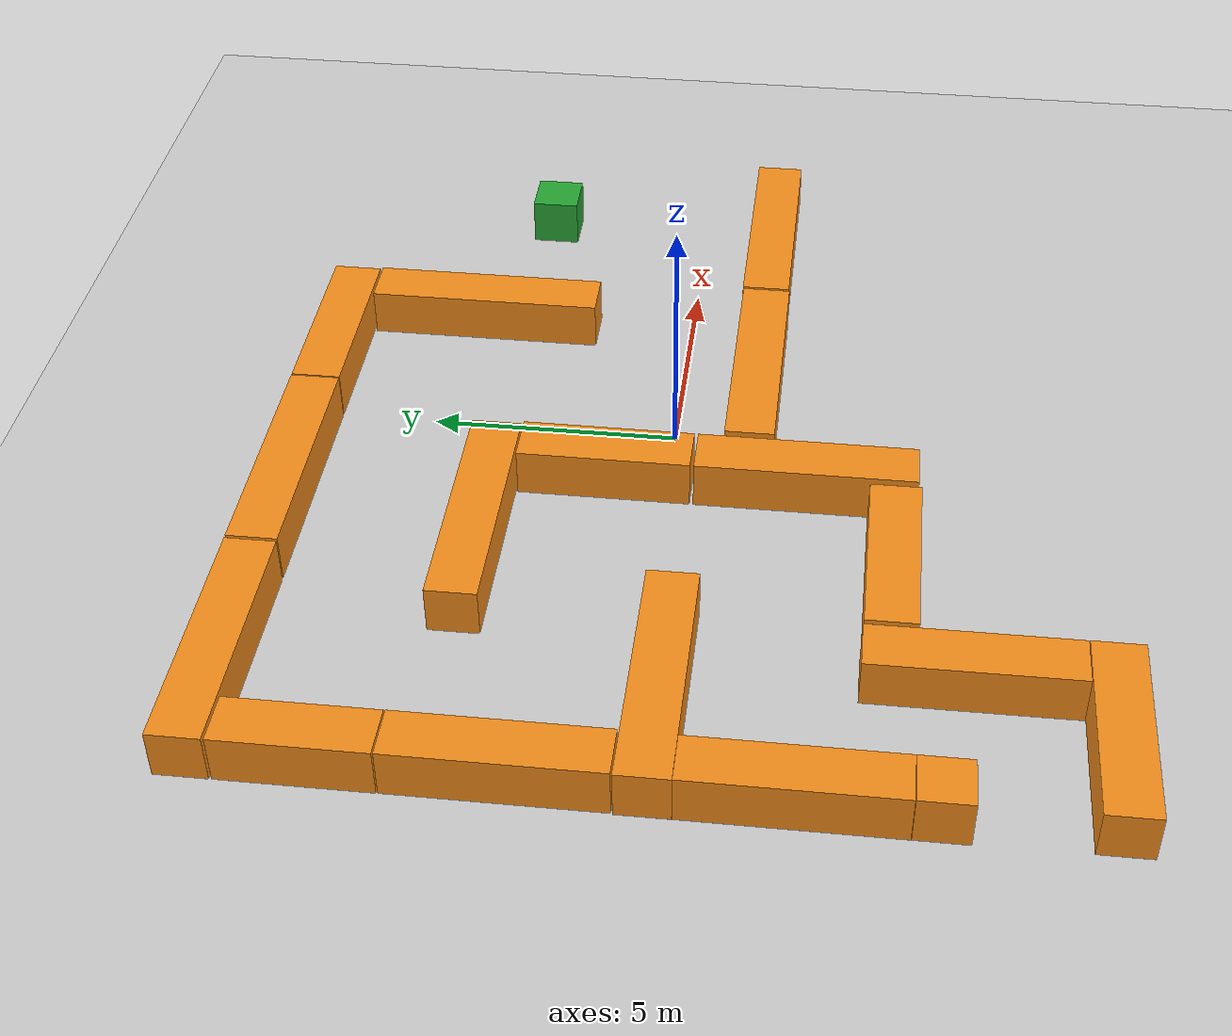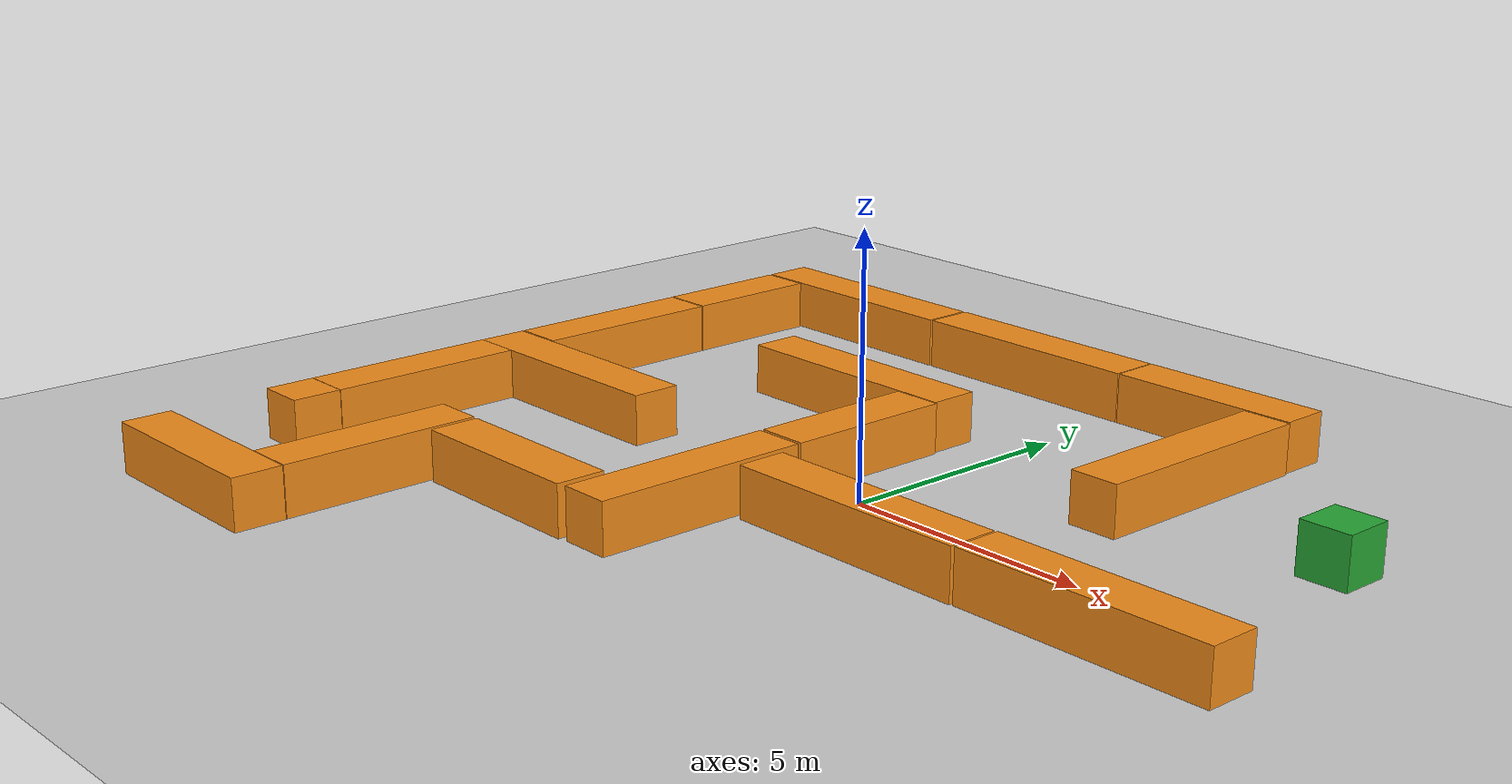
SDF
<sdf version="1.7">
 <world name="default">
  <light name="sun" type="directional">
   <pose>0 0 10 0 -0 0</pose>
   <diffuse>0.8 0.8 0.8 1</diffuse>
   <specular>0.2 0.2 0.2 1</specular>
   <attenuation>
    <range>1000</range>
    <constant>0.9</constant>
    <linear>0.01</linear>
    <quadratic>0.001</quadratic>
   </attenuation>
   <direction>-0.5 0.1 -0.9</direction>
   <spot><inner_angle>0</inner_angle><outer_angle>0</outer_angle><falloff>0</falloff></spot>
  </light>
  <model name="ground_plane">
   <static>1</static>
   <link name="link">
    <collision name="collision">
     <geometry><plane><normal>0 0 1</normal><size>100 100</size></plane></geometry>
     <surface>
      <contact><collide_bitmask>65535</collide_bitmask></contact>
      <friction><ode><mu>100</mu><mu2>50</mu2></ode></friction>
     </surface>
    </collision>
    <visual name="visual">
     <cast_shadows>0</cast_shadows>
     <geometry><plane><normal>0 0 1</normal><size>100 100</size></plane></geometry>
     <material>
      <script><uri>file://media/materials/scripts/gazebo.material</uri><name>Gazebo/Grey</name></script>
     </material>
    </visual>
   </link>
  </model>
  <gravity>0 0 -9.8</gravity>
  <magnetic_field>6e-06 2.3e-05 -4.2e-05</magnetic_field>
  <atmosphere type="adiabatic"/>
  <physics type="ode">
   <max_step_size>0.001</max_step_size>
   <real_time_factor>1</real_time_factor>
   <real_time_update_rate>1000</real_time_update_rate>
  </physics>
  <scene><ambient>0.4 0.4 0.4 1</ambient><background>0.7 0.7 0.7 1</background><shadows>1</shadows></scene>
  <spherical_coordinates>
   <surface_model>EARTH_WGS84</surface_model>
   <latitude_deg>0</latitude_deg>
   <longitude_deg>0</longitude_deg>
   <elevation>0</elevation>
   <heading_deg>0</heading_deg>
  </spherical_coordinates>
  <model name="unit_box">
   <static>1</static>
   <pose>7.49608 3.52768 0.499995 0 1e-05 0</pose>
   <link name="link">
    <inertial>
     <mass>1</mass>
     <inertia>
      <ixx>0.166667</ixx>
      <ixy>0</ixy>
      <ixz>0</ixz>
      <iyy>0.166667</iyy>
      <iyz>0</iyz>
      <izz>0.166667</izz>
     </inertia>
    </inertial>
    <collision name="collision"><geometry><box><size>1 1 1</size></box></geometry></collision>
    <visual name="visual">
     <geometry><box><size>1 1 1</size></box></geometry>
     <material>
      <script><name>Gazebo/Green</name><uri>file://media/materials/scripts/gazebo.material</uri></script>
     </material>
    </visual>
   </link>
  </model>
  <model name="unit_box_clone">
   <static>1</static>
   <pose>-9.53567 -5.48969 0.499995 0 -1e-05 0</pose>
   <link name="link">
    <inertial>
     <mass>1</mass>
     <inertia>
      <ixx>0.166667</ixx>
      <ixy>0</ixy>
      <ixz>0</ixz>
      <iyy>0.166667</iyy>
      <iyz>0</iyz>
      <izz>0.166667</izz>
     </inertia>
    </inertial>
    <collision name="collision"><geometry><box><size>1 1 1</size></box></geometry></collision>
    <visual name="visual">
     <geometry><box><size>1 1 1</size></box></geometry>
     <material>
      <script><name>Gazebo/Orange</name><uri>file://media/materials/scripts/gazebo.material</uri></script>
     </material>
    </visual>
   </link>
  </model>
  <model name="unit_box_clone_clone">
   <static>1</static>
   <pose>-8.00252 -8.50952 0.499257 -0 -0.000372 2e-06</pose>
   <link name="link">
    <inertial>
     <mass>1</mass>
     <inertia>
      <ixx>0.166667</ixx>
      <ixy>0</ixy>
      <ixz>0</ixz>
      <iyy>0.166667</iyy>
      <iyz>0</iyz>
      <izz>0.166667</izz>
     </inertia>
    </inertial>
    <collision name="collision"><geometry><box><size>3.99612 1 1</size></box></geometry></collision>
    <visual name="visual">
     <geometry><box><size>3.99612 1 1</size></box></geometry>
     <material>
      <script><name>Gazebo/Orange</name><uri>file://media/materials/scripts/gazebo.material</uri></script>
     </material>
    </visual>
   </link>
  </model>
  <model name="unit_box_clone_clone_clone">
   <static>1</static>
   <pose>-6.51657 -5.99663 0.499998 5e-06 -0 -1.56715</pose>
   <link name="link">
    <inertial>
     <mass>1</mass>
     <inertia>
      <ixx>0.166667</ixx>
      <ixy>0</ixy>
      <ixz>0</ixz>
      <iyy>0.166667</iyy>
      <iyz>0</iyz>
      <izz>0.166667</izz>
     </inertia>
    </inertial>
    <collision name="collision"><geometry><box><size>3.99612 1 1</size></box></geometry></collision>
    <visual name="visual">
     <geometry><box><size>3.99612 1 1</size></box></geometry>
     <material>
      <script><name>Gazebo/Orange</name><uri>file://media/materials/scripts/gazebo.material</uri></script>
     </material>
    </visual>
   </link>
  </model>
  <model name="unit_box_clone_clone_clone_0">
   <static>1</static>
   <pose>-9.53647 -2.98191 0.499257 0 0.000372 -1.5708</pose>
   <link name="link">
    <inertial>
     <mass>1</mass>
     <inertia>
      <ixx>0.166667</ixx>
      <ixy>0</ixy>
      <ixz>0</ixz>
      <iyy>0.166667</iyy>
      <iyz>0</iyz>
      <izz>0.166667</izz>
     </inertia>
    </inertial>
    <collision name="collision"><geometry><box><size>3.99612 1 1</size></box></geometry></collision>
    <visual name="visual">
     <geometry><box><size>3.99612 1 1</size></box></geometry>
     <material>
      <script><name>Gazebo/Orange</name><uri>file://media/materials/scripts/gazebo.material</uri></script>
     </material>
    </visual>
   </link>
  </model>
  <model name="unit_box_clone_clone_clone_1">
   <static>1</static>
   <pose>-7.54468 -0.480219 0.497906 0 -0.00084 -1.5e-05</pose>
   <link name="link">
    <inertial>
     <mass>1</mass>
     <inertia>
      <ixx>0.166667</ixx>
      <ixy>0</ixy>
      <ixz>0</ixz>
      <iyy>0.166667</iyy>
      <iyz>0</iyz>
      <izz>0.166667</izz>
     </inertia>
    </inertial>
    <collision name="collision"><geometry><box><size>4.98552 1 1</size></box></geometry></collision>
    <visual name="visual">
     <geometry><box><size>4.98552 1 1</size></box></geometry>
     <material>
      <script><name>Gazebo/Orange</name><uri>file://media/materials/scripts/gazebo.material</uri></script>
     </material>
    </visual>
   </link>
  </model>
  <model name="unit_box_clone_0">
   <static>1</static>
   <pose>-4.04125 -4.5118 0.5 0 0 -0.000102</pose>
   <link name="link">
    <inertial>
     <mass>1</mass>
     <inertia>
      <ixx>0.166667</ixx>
      <ixy>0</ixy>
      <ixz>0</ixz>
      <iyy>0.166667</iyy>
      <iyz>0</iyz>
      <izz>0.166667</izz>
     </inertia>
    </inertial>
    <collision name="collision"><geometry><box><size>3.75944 1 1</size></box></geometry></collision>
    <visual name="visual">
     <geometry><box><size>3.75944 1 1</size></box></geometry>
     <material>
      <script><name>Gazebo/Orange</name><uri>file://media/materials/scripts/gazebo.material</uri></script>
     </material>
    </visual>
   </link>
  </model>
  <model name="unit_box_clone_clone_clone_0_clone">
   <static>1</static>
   <pose>-1.50383 -2.75903 0.49883 0 0.000532 -1.57056</pose>
   <link name="link">
    <inertial>
     <mass>1</mass>
     <inertia>
      <ixx>0.166667</ixx>
      <ixy>0</ixy>
      <ixz>0</ixz>
      <iyy>0.166667</iyy>
      <iyz>0</iyz>
      <izz>0.166667</izz>
     </inertia>
    </inertial>
    <collision name="collision"><geometry><box><size>4.39688 1 1</size></box></geometry></collision>
    <visual name="visual">
     <geometry><box><size>4.39688 1 1</size></box></geometry>
     <material>
      <script><name>Gazebo/Orange</name><uri>file://media/materials/scripts/gazebo.material</uri></script>
     </material>
    </visual>
   </link>
  </model>
  <model name="unit_box_clone_clone_clone_0_clone_0">
   <static>1</static>
   <pose>-9.52181 2.04729 0.499257 -0 -0.000372 -1.5708</pose>
   <link name="link">
    <inertial>
     <mass>1</mass>
     <inertia>
      <ixx>0.166667</ixx>
      <ixy>0</ixy>
      <ixz>0</ixz>
      <iyy>0.166667</iyy>
      <iyz>0</iyz>
      <izz>0.166667</izz>
     </inertia>
    </inertial>
    <collision name="collision"><geometry><box><size>3.99612 1 1</size></box></geometry></collision>
    <visual name="visual">
     <geometry><box><size>3.99612 1 1</size></box></geometry>
     <material>
      <script><name>Gazebo/Orange</name><uri>file://media/materials/scripts/gazebo.material</uri></script>
     </material>
    </visual>
   </link>
  </model>
  <model name="unit_box_clone_clone_clone_clone">
   <static>1</static>
   <pose>-1.50226 1.23699 0.5 1e-06 -0 -1.57147</pose>
   <link name="link">
    <inertial>
     <mass>1</mass>
     <inertia>
      <ixx>0.166667</ixx>
      <ixy>0</ixy>
      <ixz>0</ixz>
      <iyy>0.166667</iyy>
      <iyz>0</iyz>
      <izz>0.166667</izz>
     </inertia>
    </inertial>
    <collision name="collision"><geometry><box><size>3.44539 1 1</size></box></geometry></collision>
    <visual name="visual">
     <geometry><box><size>3.44539 1 1</size></box></geometry>
     <material>
      <script><name>Gazebo/Orange</name><uri>file://media/materials/scripts/gazebo.material</uri></script>
     </material>
    </visual>
   </link>
  </model>
  <model name="unit_box_clone_clone_clone_1_clone">
   <static>1</static>
   <pose>-3.55615 3.49859 0.497906 0 0.00084 1.5e-05</pose>
   <link name="link">
    <inertial>
     <mass>1</mass>
     <inertia>
      <ixx>0.166667</ixx>
      <ixy>0</ixy>
      <ixz>0</ixz>
      <iyy>0.166667</iyy>
      <iyz>0</iyz>
      <izz>0.166667</izz>
     </inertia>
    </inertial>
    <collision name="collision"><geometry><box><size>4.98553 1 1</size></box></geometry></collision>
    <visual name="visual">
     <geometry><box><size>4.98553 1 1</size></box></geometry>
     <material>
      <script><name>Gazebo/Orange</name><uri>file://media/materials/scripts/gazebo.material</uri></script>
     </material>
    </visual>
   </link>
  </model>
  <model name="unit_box_clone_clone_clone_clone_clone">
   <static>1</static>
   <pose>-9.52732 5.5081 0.5 0 0 -1.57005</pose>
   <link name="link">
    <inertial>
     <mass>1</mass>
     <inertia>
      <ixx>0.166667</ixx>
      <ixy>0</ixy>
      <ixz>0</ixz>
      <iyy>0.166667</iyy>
      <iyz>0</iyz>
      <izz>0.166667</izz>
     </inertia>
    </inertial>
    <collision name="collision"><geometry><box><size>2.87018 1 1</size></box></geometry></collision>
    <visual name="visual">
     <geometry><box><size>2.87018 1 1</size></box></geometry>
     <material>
      <script><name>Gazebo/Orange</name><uri>file://media/materials/scripts/gazebo.material</uri></script>
     </material>
    </visual>
   </link>
  </model>
  <model name="unit_box_clone_clone_clone_1_clone_clone_0">
   <static>1</static>
   <pose>-7.53837 7.492 0.497906 0 0.00084 -1.5e-05</pose>
   <link name="link">
    <inertial>
     <mass>1</mass>
     <inertia>
      <ixx>0.166667</ixx>
      <ixy>0</ixy>
      <ixz>0</ixz>
      <iyy>0.166667</iyy>
      <iyz>0</iyz>
      <izz>0.166667</izz>
     </inertia>
    </inertial>
    <collision name="collision"><geometry><box><size>4.98553 1 1</size></box></geometry></collision>
    <visual name="visual">
     <geometry><box><size>4.98553 1 1</size></box></geometry>
     <material>
      <script><name>Gazebo/Orange</name><uri>file://media/materials/scripts/gazebo.material</uri></script>
     </material>
    </visual>
   </link>
  </model>
  <model name="unit_box_clone_clone_clone_1_clone_clone">
   <static>1</static>
   <pose>-2.4918 7.49123 0.497906 0 0.00084 1.5e-05</pose>
   <link name="link">
    <inertial>
     <mass>1</mass>
     <inertia>
      <ixx>0.166667</ixx>
      <ixy>0</ixy>
      <ixz>0</ixz>
      <iyy>0.166667</iyy>
      <iyz>0</iyz>
      <izz>0.166667</izz>
     </inertia>
    </inertial>
    <collision name="collision"><geometry><box><size>4.98553 1 1</size></box></geometry></collision>
    <visual name="visual">
     <geometry><box><size>4.98553 1 1</size></box></geometry>
     <material>
      <script><name>Gazebo/Orange</name><uri>file://media/materials/scripts/gazebo.material</uri></script>
     </material>
    </visual>
   </link>
  </model>
  <model name="unit_box_clone_0_clone">
   <static>1</static>
   <pose>2.01123 7.48834 0.499293 0 -0.000358 -5.1e-05</pose>
   <link name="link">
    <inertial>
     <mass>1</mass>
     <inertia>
      <ixx>0.166667</ixx>
      <ixy>0</ixy>
      <ixz>0</ixz>
      <iyy>0.166667</iyy>
      <iyz>0</iyz>
      <izz>0.166667</izz>
     </inertia>
    </inertial>
    <collision name="collision"><geometry><box><size>3.95531 1 1</size></box></geometry></collision>
    <visual name="visual">
     <geometry><box><size>3.95531 1 1</size></box></geometry>
     <material>
      <script><name>Gazebo/Orange</name><uri>file://media/materials/scripts/gazebo.material</uri></script>
     </material>
    </visual>
   </link>
  </model>
  <model name="unit_box_clone_clone_clone_0_clone_clone">
   <static>1</static>
   <pose>3.53624 4.50228 0.49812 0 0.000772 -1.5708</pose>
   <link name="link">
    <inertial>
     <mass>1</mass>
     <inertia>
      <ixx>0.166667</ixx>
      <ixy>0</ixy>
      <ixz>0</ixz>
      <iyy>0.166667</iyy>
      <iyz>0</iyz>
      <izz>0.166667</izz>
     </inertia>
    </inertial>
    <collision name="collision"><geometry><box><size>4.8694 1 1</size></box></geometry></collision>
    <visual name="visual">
     <geometry><box><size>4.8694 1 1</size></box></geometry>
     <material>
      <script><name>Gazebo/Orange</name><uri>file://media/materials/scripts/gazebo.material</uri></script>
     </material>
    </visual>
   </link>
  </model>
  <model name="unit_box_clone_clone_clone_1_clone_0">
   <static>1</static>
   <pose>1.63882 -1.56943 0.497906 0 0.00084 -1.5e-05</pose>
   <link name="link">
    <inertial>
     <mass>1</mass>
     <inertia>
      <ixx>0.166667</ixx>
      <ixy>0</ixy>
      <ixz>0</ixz>
      <iyy>0.166667</iyy>
      <iyz>0</iyz>
      <izz>0.166667</izz>
     </inertia>
    </inertial>
    <collision name="collision"><geometry><box><size>4.98553 1 1</size></box></geometry></collision>
    <visual name="visual">
     <geometry><box><size>4.98553 1 1</size></box></geometry>
     <material>
      <script><name>Gazebo/Orange</name><uri>file://media/materials/scripts/gazebo.material</uri></script>
     </material>
    </visual>
   </link>
  </model>
  <model name="unit_box_clone_clone_clone_1_clone_1">
   <static>1</static>
   <pose>6.6795 -1.55063 0.497906 0 0.00084 -1.5e-05</pose>
   <link name="link">
    <inertial>
     <mass>1</mass>
     <inertia>
      <ixx>0.166667</ixx>
      <ixy>0</ixy>
      <ixz>0</ixz>
      <iyy>0.166667</iyy>
      <iyz>0</iyz>
      <izz>0.166667</izz>
     </inertia>
    </inertial>
    <collision name="collision"><geometry><box><size>4.98553 1 1</size></box></geometry></collision>
    <visual name="visual">
     <geometry><box><size>4.98553 1 1</size></box></geometry>
     <material>
      <script><name>Gazebo/Orange</name><uri>file://media/materials/scripts/gazebo.material</uri></script>
     </material>
    </visual>
   </link>
  </model>
 </world>
</sdf>
